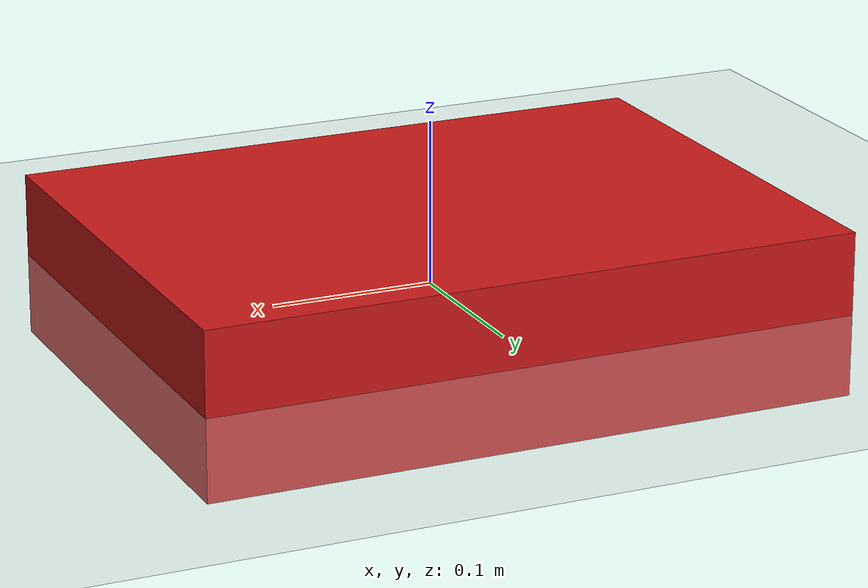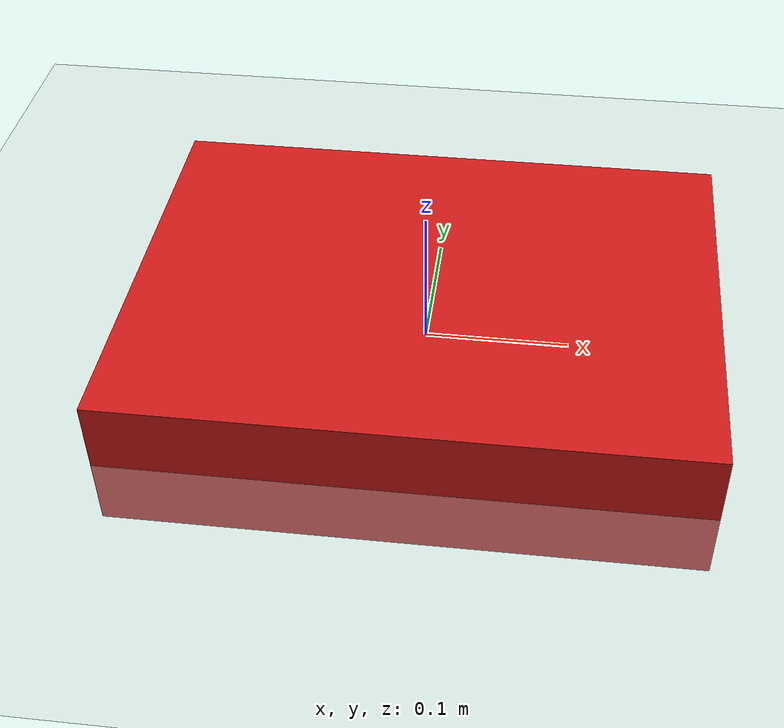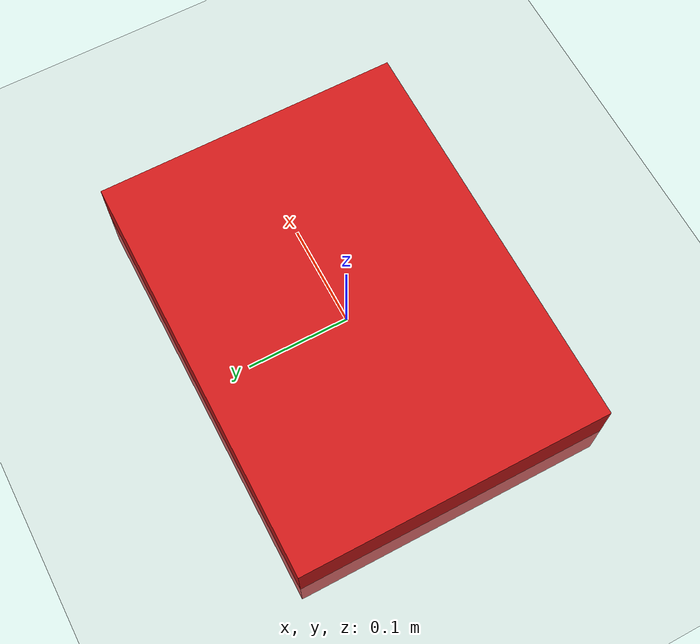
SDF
<?xml version="1.0" ?>
<sdf version="1.7">
  <world name="skid_steer_world">
    <!-- A global light source -->
    <light type="directional" name="sun">
      <cast_shadows>true</cast_shadows>
      <pose>0 0 10 0 0 0</pose>
      <diffuse>0.8 0.8 0.8 1</diffuse>
      <specular>0.2 0.2 0.2 1</specular>
      <attenuation>
        <range>1000</range>
        <constant>0.9</constant>
        <linear>0.01</linear>
        <quadratic>0.001</quadratic>
      </attenuation>
      <direction>-0.5 0.1 -0.9</direction>
    </light>

    <!-- A ground plane -->
    <model name="ground_plane">
      <static>true</static>
      <link name="link">
        <collision name="collision">
          <geometry>
            <plane>
              <normal>0 0 1</normal>
              <size>100 100</size>
            </plane>
          </geometry>
        </collision>
        <visual name="visual">
          <geometry>
            <plane>
              <normal>0 0 1</normal>
              <size>100 100</size>
            </plane>
          </geometry>
          <material>
            <ambient>0.8 0.8 0.8 1</ambient>
            <diffuse>0.8 0.8 0.8 1</diffuse>
            <specular>0.2 0.2 0.2 1</specular>
          </material>
        </visual>
      </link>
    </model>

    <!-- Skid steer robot model directly embedded -->
    <model name="skid_steer_robot">
      <static>false</static>

      <!-- Base link -->
      <link name="base_link">
        <collision name="base_collision">
          <geometry>
            <box>
              <size>0.4 0.3 0.1</size>
            </box>
          </geometry>
        </collision>
        <visual name="base_visual">
          <geometry>
            <box>
              <size>0.4 0.3 0.1</size>
            </box>
          </geometry>
          <material>
            <ambient>0.8 0.1 0.1 1.0</ambient>
            <diffuse>0.8 0.1 0.1 1.0</diffuse>
          </material>
        </visual>
        <inertial>
          <mass>10.0</mass>
          <inertia>
            <ixx>0.1</ixx>
            <ixy>0</ixy>
            <ixz>0</ixz>
            <iyy>0.1</iyy>
            <iyz>0</iyz>
            <izz>0.1</izz>
          </inertia>
        </inertial>
      </link>

      <!-- Front left wheel -->
      <link name="front_left_wheel">
        <collision name="front_left_wheel_collision">
          <geometry>
            <cylinder>
              <radius>0.05</radius>
              <length>0.02</length>
            </cylinder>
          </geometry>
        </collision>
        <visual name="front_left_wheel_visual">
          <geometry>
            <cylinder>
              <radius>0.05</radius>
              <length>0.02</length>
            </cylinder>
          </geometry>
          <material>
            <ambient>0.1 0.1 0.8 1.0</ambient>
            <diffuse>0.1 0.1 0.8 1.0</diffuse>
          </material>
        </visual>
        <inertial>
          <mass>1.0</mass>
          <inertia>
            <ixx>0.01</ixx>
            <ixy>0</ixy>
            <ixz>0</ixz>
            <iyy>0.01</iyy>
            <iyz>0</iyz>
            <izz>0.01</izz>
          </inertia>
        </inertial>
      </link>

      <!-- Front right wheel -->
      <link name="front_right_wheel">
        <collision name="front_right_wheel_collision">
          <geometry>
            <cylinder>
              <radius>0.05</radius>
              <length>0.02</length>
            </cylinder>
          </geometry>
        </collision>
        <visual name="front_right_wheel_visual">
          <geometry>
            <cylinder>
              <radius>0.05</radius>
              <length>0.02</length>
            </cylinder>
          </geometry>
          <material>
            <ambient>0.1 0.1 0.8 1.0</ambient>
            <diffuse>0.1 0.1 0.8 1.0</diffuse>
          </material>
        </visual>
        <inertial>
          <mass>1.0</mass>
          <inertia>
            <ixx>0.01</ixx>
            <ixy>0</ixy>
            <ixz>0</ixz>
            <iyy>0.01</iyy>
            <iyz>0</iyz>
            <izz>0.01</izz>
          </inertia>
        </inertial>
      </link>

      <!-- Rear left wheel -->
      <link name="rear_left_wheel">
        <collision name="rear_left_wheel_collision">
          <geometry>
            <cylinder>
              <radius>0.05</radius>
              <length>0.02</length>
            </cylinder>
          </geometry>
        </collision>
        <visual name="rear_left_wheel_visual">
          <geometry>
            <cylinder>
              <radius>0.05</radius>
              <length>0.02</length>
            </cylinder>
          </geometry>
          <material>
            <ambient>0.1 0.1 0.8 1.0</ambient>
            <diffuse>0.1 0.1 0.8 1.0</diffuse>
          </material>
        </visual>
        <inertial>
          <mass>1.0</mass>
          <inertia>
            <ixx>0.01</ixx>
            <ixy>0</ixy>
            <ixz>0</ixz>
            <iyy>0.01</iyy>
            <iyz>0</iyz>
            <izz>0.01</izz>
          </inertia>
        </inertial>
      </link>

      <!-- Rear right wheel -->
      <link name="rear_right_wheel">
        <collision name="rear_right_wheel_collision">
          <geometry>
            <cylinder>
              <radius>0.05</radius>
              <length>0.02</length>
            </cylinder>
          </geometry>
        </collision>
        <visual name="rear_right_wheel_visual">
          <geometry>
            <cylinder>
              <radius>0.05</radius>
              <length>0.02</length>
            </cylinder>
          </geometry>
          <material>
            <ambient>0.1 0.1 0.8 1.0</ambient>
            <diffuse>0.1 0.1 0.8 1.0</diffuse>
          </material>
        </visual>
        <inertial>
          <mass>1.0</mass>
          <inertia>
            <ixx>0.01</ixx>
            <ixy>0</ixy>
            <ixz>0</ixz>
            <iyy>0.01</iyy>
            <iyz>0</iyz>
            <izz>0.01</izz>
          </inertia>
        </inertial>
      </link>

      <!-- Joints -->
      <joint name="front_left_wheel_joint" type="revolute">
        <parent>base_link</parent>
        <child>front_left_wheel</child>
        <axis>
          <xyz>0 0 1</xyz>
        </axis>
        <pose>0.15 0.16 0.05 0 0 0</pose>
      </joint>

      <joint name="front_right_wheel_joint" type="revolute">
        <parent>base_link</parent>
        <child>front_right_wheel</child>
        <axis>
          <xyz>0 0 1</xyz>
        </axis>
        <pose>0.15 -0.16 0.05 0 0 0</pose>
      </joint>

      <joint name="rear_left_wheel_joint" type="revolute">
        <parent>base_link</parent>
        <child>rear_left_wheel</child>
        <axis>
          <xyz>0 0 1</xyz>
        </axis>
        <pose>-0.15 0.16 0.05 0 0 0</pose>
      </joint>

      <joint name="rear_right_wheel_joint" type="revolute">
        <parent>base_link</parent>
        <child>rear_right_wheel</child>
        <axis>
          <xyz>0 0 1</xyz>
        </axis>
        <pose>-0.15 -0.16 0.05 0 0 0</pose>
      </joint>

      <!-- ros2_control plugin -->
      <gazebo>
        <plugin name="ros2_control" filename="libgz_ros2_control.so">
          <parameters>$(find skid_steer_robot)/config/ros2_control.yaml</parameters>
        </plugin>
      </gazebo>
    </model>

    <!-- Physics settings -->
    <physics type="ode">
      <max_step_size>0.001</max_step_size>
      <real_time_factor>1</real_time_factor>
      <real_time_update_rate>1000</real_time_update_rate>
      <gravity>0 0 -9.81</gravity>
    </physics>

  </world>
</sdf>
